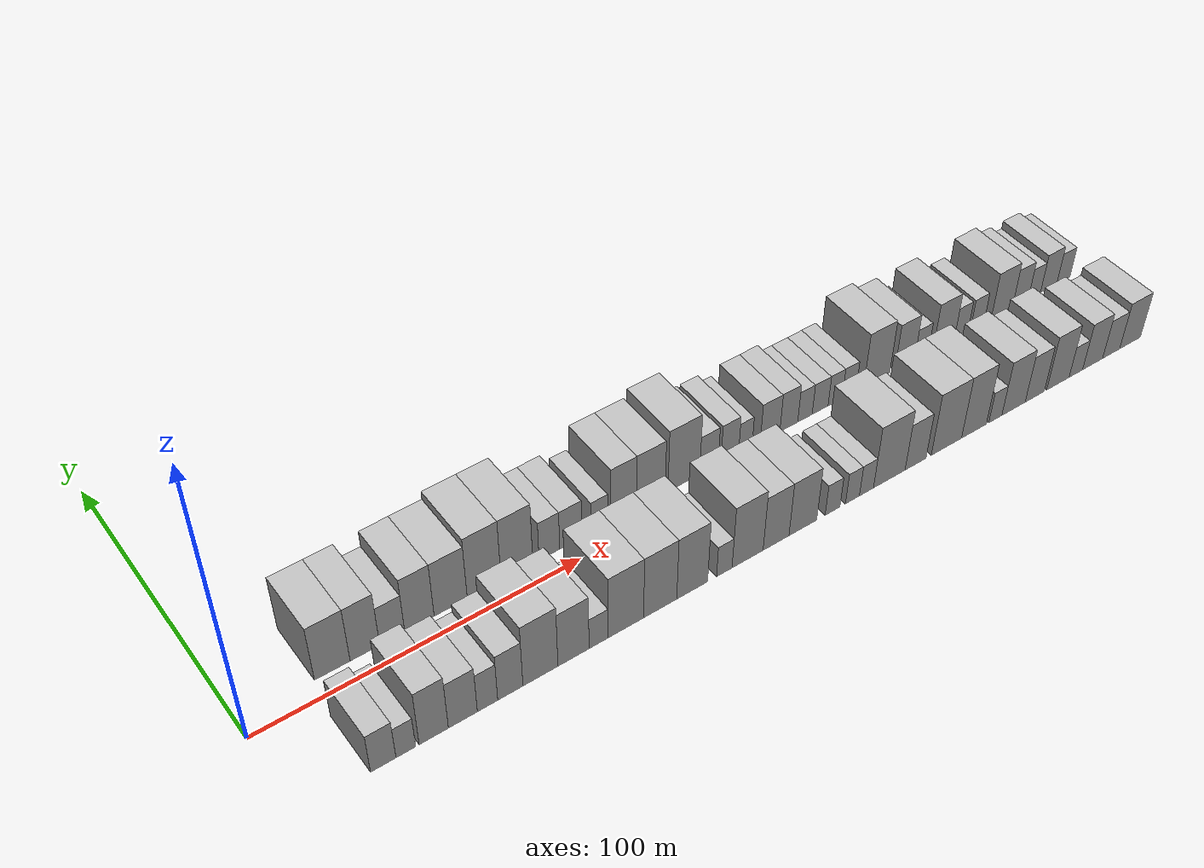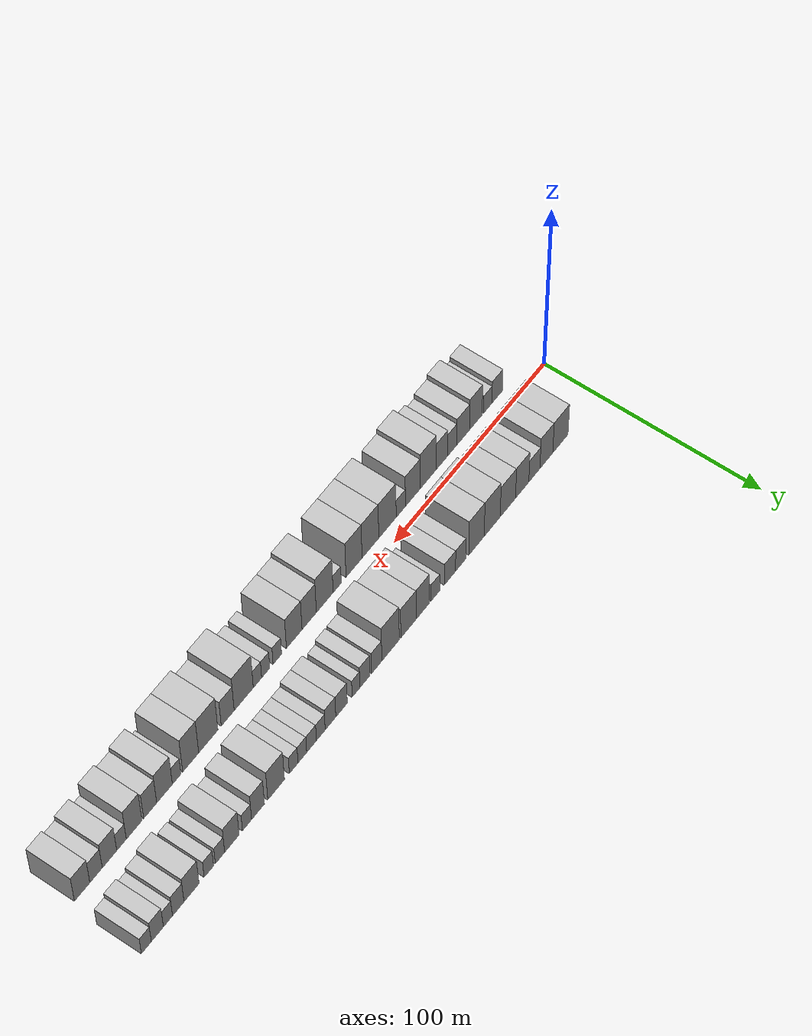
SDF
<sdf version="1.6">
 <world name="default">
  <scene>
   <sky><clouds><speed>12</speed></clouds></sky>
   <ambient>0.4 0.4 0.4 1</ambient>
   <background>0.7 0.7 0.7 1</background>
   <shadows>1</shadows>
  </scene>
  <gravity>0 0 -9.8066</gravity>
  <magnetic_field>6e-06 2.3e-05 -4.2e-05</magnetic_field>
  <physics default="0" name="default_physics" type="ode">
   <ode>
    <solver>
     <type>quick</type>
     <iters>10</iters>
     <sor>1.0</sor>
     <use_dynamic_moi_rescaling>0</use_dynamic_moi_rescaling>
    </solver>
    <constraints>
     <cfm>0</cfm>
     <erp>0.2</erp>
     <contact_max_correcting_vel>100</contact_max_correcting_vel>
     <contact_surface_layer>0.001</contact_surface_layer>
    </constraints>
   </ode>
   <max_step_size>0.004</max_step_size>
   <real_time_factor>1</real_time_factor>
   <real_time_update_rate>250</real_time_update_rate>
  </physics>
  <light name="sun" type="directional">
   <pose>0 0 10 0 0 0</pose>
   <diffuse>0.8 0.8 0.8 1</diffuse>
   <specular>0.2 0.2 0.2 1</specular>
   <attenuation>
    <range>1000</range>
    <constant>0.9</constant>
    <linear>0.01</linear>
    <quadratic>0.001</quadratic>
   </attenuation>
   <direction>-0.5 0.1 -0.9</direction>
  </light>
  <model name="building_1">
   <static>1</static>
   <pose>27.1779 16.0000 0 0.000000 0.000000 1.570796</pose>
   <link name="link">
    <pose>0 0 10.50 0 0 0</pose>
    <collision name="collision"><geometry><box><size>20.0000 10.3558 21.0000</size></box></geometry></collision>
    <visual name="visual">
     <cast_shadows>0</cast_shadows>
     <geometry><box><size>20.0000 10.3558 21.0000</size></box></geometry>
     <material>
      <script>
       <uri>model://HANNAS_wall/materials/scripts</uri>
       <uri>model://HANNAS_wall/materials/textures</uri>
       <name>vrc/HANNAS_wall</name>
      </script>
     </material>
    </visual>
   </link>
  </model>
  <model name="building_2">
   <static>1</static>
   <pose>36.7099 16.0000 0 0.000000 0.000000 1.570796</pose>
   <link name="link">
    <pose>0 0 10.50 0 0 0</pose>
    <collision name="collision"><geometry><box><size>20.0000 8.7081 21.0000</size></box></geometry></collision>
    <visual name="visual">
     <cast_shadows>0</cast_shadows>
     <geometry><box><size>20.0000 8.7081 21.0000</size></box></geometry>
     <material>
      <script>
       <uri>model://HANNAS_wall/materials/scripts</uri>
       <uri>model://HANNAS_wall/materials/textures</uri>
       <name>vrc/HANNAS_wall</name>
      </script>
     </material>
    </visual>
   </link>
  </model>
  <model name="building_3">
   <static>1</static>
   <pose>44.7975 16.0000 0 0.000000 0.000000 1.570796</pose>
   <link name="link">
    <pose>0 0 7.50 0 0 0</pose>
    <collision name="collision"><geometry><box><size>20.0000 7.4669 15.0000</size></box></geometry></collision>
    <visual name="visual">
     <cast_shadows>0</cast_shadows>
     <geometry><box><size>20.0000 7.4669 15.0000</size></box></geometry>
     <material>
      <script>
       <uri>model://HANNAS_wall/materials/scripts</uri>
       <uri>model://HANNAS_wall/materials/textures</uri>
       <name>vrc/HANNAS_wall</name>
      </script>
     </material>
    </visual>
   </link>
  </model>
  <model name="building_4">
   <static>1</static>
   <pose>52.9741 16.0000 0 0.000000 0.000000 1.570796</pose>
   <link name="link">
    <pose>0 0 10.50 0 0 0</pose>
    <collision name="collision"><geometry><box><size>20.0000 8.8863 21.0000</size></box></geometry></collision>
    <visual name="visual">
     <cast_shadows>0</cast_shadows>
     <geometry><box><size>20.0000 8.8863 21.0000</size></box></geometry>
     <material>
      <script>
       <uri>model://HANNAS_wall/materials/scripts</uri>
       <uri>model://HANNAS_wall/materials/textures</uri>
       <name>vrc/HANNAS_wall</name>
      </script>
     </material>
    </visual>
   </link>
  </model>
  <model name="building_5">
   <static>1</static>
   <pose>62.5146 16.0000 0 0.000000 0.000000 1.570796</pose>
   <link name="link">
    <pose>0 0 10.50 0 0 0</pose>
    <collision name="collision"><geometry><box><size>20.0000 10.1948 21.0000</size></box></geometry></collision>
    <visual name="visual">
     <cast_shadows>0</cast_shadows>
     <geometry><box><size>20.0000 10.1948 21.0000</size></box></geometry>
     <material>
      <script>
       <uri>model://HANNAS_wall/materials/scripts</uri>
       <uri>model://HANNAS_wall/materials/textures</uri>
       <name>vrc/HANNAS_wall</name>
      </script>
     </material>
    </visual>
   </link>
  </model>
  <model name="building_6">
   <static>1</static>
   <pose>72.9030 16.0000 0 0.000000 0.000000 1.570796</pose>
   <link name="link">
    <pose>0 0 12.00 0 0 0</pose>
    <collision name="collision"><geometry><box><size>20.0000 10.5820 24.0000</size></box></geometry></collision>
    <visual name="visual">
     <cast_shadows>0</cast_shadows>
     <geometry><box><size>20.0000 10.5820 24.0000</size></box></geometry>
     <material>
      <script>
       <uri>model://HANNAS_wall/materials/scripts</uri>
       <uri>model://HANNAS_wall/materials/textures</uri>
       <name>vrc/HANNAS_wall</name>
      </script>
     </material>
    </visual>
   </link>
  </model>
  <model name="building_7">
   <static>1</static>
   <pose>83.2527 16.0000 0 0.000000 0.000000 1.570796</pose>
   <link name="link">
    <pose>0 0 12.00 0 0 0</pose>
    <collision name="collision"><geometry><box><size>20.0000 10.1174 24.0000</size></box></geometry></collision>
    <visual name="visual">
     <cast_shadows>0</cast_shadows>
     <geometry><box><size>20.0000 10.1174 24.0000</size></box></geometry>
     <material>
      <script>
       <uri>model://HANNAS_wall/materials/scripts</uri>
       <uri>model://HANNAS_wall/materials/textures</uri>
       <name>vrc/HANNAS_wall</name>
      </script>
     </material>
    </visual>
   </link>
  </model>
  <model name="building_8">
   <static>1</static>
   <pose>93.6580 16.0000 0 0.000000 0.000000 1.570796</pose>
   <link name="link">
    <pose>0 0 7.50 0 0 0</pose>
    <collision name="collision"><geometry><box><size>20.0000 6.6933 15.0000</size></box></geometry></collision>
    <visual name="visual">
     <cast_shadows>0</cast_shadows>
     <geometry><box><size>20.0000 6.6933 15.0000</size></box></geometry>
     <material>
      <script>
       <uri>model://HANNAS_wall/materials/scripts</uri>
       <uri>model://HANNAS_wall/materials/textures</uri>
       <name>vrc/HANNAS_wall</name>
      </script>
     </material>
    </visual>
   </link>
  </model>
  <model name="building_9">
   <static>1</static>
   <pose>100.6580 16.0000 0 0.000000 0.000000 1.570796</pose>
   <link name="link">
    <pose>0 0 7.50 0 0 0</pose>
    <collision name="collision"><geometry><box><size>20.0000 7.3065 15.0000</size></box></geometry></collision>
    <visual name="visual">
     <cast_shadows>0</cast_shadows>
     <geometry><box><size>20.0000 7.3065 15.0000</size></box></geometry>
     <material>
      <script>
       <uri>model://HANNAS_wall/materials/scripts</uri>
       <uri>model://HANNAS_wall/materials/textures</uri>
       <name>vrc/HANNAS_wall</name>
      </script>
     </material>
    </visual>
   </link>
  </model>
  <model name="building_10">
   <static>1</static>
   <pose>110.0978 16.0000 0 0.000000 0.000000 1.570796</pose>
   <link name="link">
    <pose>0 0 6.00 0 0 0</pose>
    <collision name="collision"><geometry><box><size>20.0000 5.5731 12.0000</size></box></geometry></collision>
    <visual name="visual">
     <cast_shadows>0</cast_shadows>
     <geometry><box><size>20.0000 5.5731 12.0000</size></box></geometry>
     <material>
      <script>
       <uri>model://HANNAS_wall/materials/scripts</uri>
       <uri>model://HANNAS_wall/materials/textures</uri>
       <name>vrc/HANNAS_wall</name>
      </script>
     </material>
    </visual>
   </link>
  </model>
  <model name="building_11">
   <static>1</static>
   <pose>118.2044 16.0000 0 0.000000 0.000000 1.570796</pose>
   <link name="link">
    <pose>0 0 10.50 0 0 0</pose>
    <collision name="collision"><geometry><box><size>20.0000 8.6402 21.0000</size></box></geometry></collision>
    <visual name="visual">
     <cast_shadows>0</cast_shadows>
     <geometry><box><size>20.0000 8.6402 21.0000</size></box></geometry>
     <material>
      <script>
       <uri>model://HANNAS_wall/materials/scripts</uri>
       <uri>model://HANNAS_wall/materials/textures</uri>
       <name>vrc/HANNAS_wall</name>
      </script>
     </material>
    </visual>
   </link>
  </model>
  <model name="building_12">
   <static>1</static>
   <pose>127.4132 16.0000 0 0.000000 0.000000 1.570796</pose>
   <link name="link">
    <pose>0 0 10.50 0 0 0</pose>
    <collision name="collision"><geometry><box><size>20.0000 9.7773 21.0000</size></box></geometry></collision>
    <visual name="visual">
     <cast_shadows>0</cast_shadows>
     <geometry><box><size>20.0000 9.7773 21.0000</size></box></geometry>
     <material>
      <script>
       <uri>model://HANNAS_wall/materials/scripts</uri>
       <uri>model://HANNAS_wall/materials/textures</uri>
       <name>vrc/HANNAS_wall</name>
      </script>
     </material>
    </visual>
   </link>
  </model>
  <model name="building_13">
   <static>1</static>
   <pose>138.8312 16.0000 0 0.000000 0.000000 1.570796</pose>
   <link name="link">
    <pose>0 0 12.00 0 0 0</pose>
    <collision name="collision"><geometry><box><size>20.0000 11.0585 24.0000</size></box></geometry></collision>
    <visual name="visual">
     <cast_shadows>0</cast_shadows>
     <geometry><box><size>20.0000 11.0585 24.0000</size></box></geometry>
     <material>
      <script>
       <uri>model://HANNAS_wall/materials/scripts</uri>
       <uri>model://HANNAS_wall/materials/textures</uri>
       <name>vrc/HANNAS_wall</name>
      </script>
     </material>
    </visual>
   </link>
  </model>
  <model name="building_14">
   <static>1</static>
   <pose>147.6243 16.0000 0 0.000000 0.000000 1.570796</pose>
   <link name="link">
    <pose>0 0 7.50 0 0 0</pose>
    <collision name="collision"><geometry><box><size>20.0000 6.5277 15.0000</size></box></geometry></collision>
    <visual name="visual">
     <cast_shadows>0</cast_shadows>
     <geometry><box><size>20.0000 6.5277 15.0000</size></box></geometry>
     <material>
      <script>
       <uri>model://HANNAS_wall/materials/scripts</uri>
       <uri>model://HANNAS_wall/materials/textures</uri>
       <name>vrc/HANNAS_wall</name>
      </script>
     </material>
    </visual>
   </link>
  </model>
  <model name="building_15">
   <static>1</static>
   <pose>155.0509 16.0000 0 0.000000 0.000000 1.570796</pose>
   <link name="link">
    <pose>0 0 7.50 0 0 0</pose>
    <collision name="collision"><geometry><box><size>20.0000 6.3255 15.0000</size></box></geometry></collision>
    <visual name="visual">
     <cast_shadows>0</cast_shadows>
     <geometry><box><size>20.0000 6.3255 15.0000</size></box></geometry>
     <material>
      <script>
       <uri>model://HANNAS_wall/materials/scripts</uri>
       <uri>model://HANNAS_wall/materials/textures</uri>
       <name>vrc/HANNAS_wall</name>
      </script>
     </material>
    </visual>
   </link>
  </model>
  <model name="building_16">
   <static>1</static>
   <pose>160.6476 16.0000 0 0.000000 0.000000 1.570796</pose>
   <link name="link">
    <pose>0 0 6.00 0 0 0</pose>
    <collision name="collision"><geometry><box><size>20.0000 4.8679 12.0000</size></box></geometry></collision>
    <visual name="visual">
     <cast_shadows>0</cast_shadows>
     <geometry><box><size>20.0000 4.8679 12.0000</size></box></geometry>
     <material>
      <script>
       <uri>model://HANNAS_wall/materials/scripts</uri>
       <uri>model://HANNAS_wall/materials/textures</uri>
       <name>vrc/HANNAS_wall</name>
      </script>
     </material>
    </visual>
   </link>
  </model>
  <model name="building_17">
   <static>1</static>
   <pose>169.6573 16.0000 0 0.000000 0.000000 1.570796</pose>
   <link name="link">
    <pose>0 0 7.50 0 0 0</pose>
    <collision name="collision"><geometry><box><size>20.0000 7.1515 15.0000</size></box></geometry></collision>
    <visual name="visual">
     <cast_shadows>0</cast_shadows>
     <geometry><box><size>20.0000 7.1515 15.0000</size></box></geometry>
     <material>
      <script>
       <uri>model://HANNAS_wall/materials/scripts</uri>
       <uri>model://HANNAS_wall/materials/textures</uri>
       <name>vrc/HANNAS_wall</name>
      </script>
     </material>
    </visual>
   </link>
  </model>
  <model name="building_18">
   <static>1</static>
   <pose>176.5369 16.0000 0 0.000000 0.000000 1.570796</pose>
   <link name="link">
    <pose>0 0 7.50 0 0 0</pose>
    <collision name="collision"><geometry><box><size>20.0000 6.6078 15.0000</size></box></geometry></collision>
    <visual name="visual">
     <cast_shadows>0</cast_shadows>
     <geometry><box><size>20.0000 6.6078 15.0000</size></box></geometry>
     <material>
      <script>
       <uri>model://HANNAS_wall/materials/scripts</uri>
       <uri>model://HANNAS_wall/materials/textures</uri>
       <name>vrc/HANNAS_wall</name>
      </script>
     </material>
    </visual>
   </link>
  </model>
  <model name="building_19">
   <static>1</static>
   <pose>182.5508 16.0000 0 0.000000 0.000000 1.570796</pose>
   <link name="link">
    <pose>0 0 6.00 0 0 0</pose>
    <collision name="collision"><geometry><box><size>20.0000 5.4199 12.0000</size></box></geometry></collision>
    <visual name="visual">
     <cast_shadows>0</cast_shadows>
     <geometry><box><size>20.0000 5.4199 12.0000</size></box></geometry>
     <material>
      <script>
       <uri>model://HANNAS_wall/materials/scripts</uri>
       <uri>model://HANNAS_wall/materials/textures</uri>
       <name>vrc/HANNAS_wall</name>
      </script>
     </material>
    </visual>
   </link>
  </model>
  <model name="building_20">
   <static>1</static>
   <pose>188.2551 16.0000 0 0.000000 0.000000 1.570796</pose>
   <link name="link">
    <pose>0 0 6.00 0 0 0</pose>
    <collision name="collision"><geometry><box><size>20.0000 5.9887 12.0000</size></box></geometry></collision>
    <visual name="visual">
     <cast_shadows>0</cast_shadows>
     <geometry><box><size>20.0000 5.9887 12.0000</size></box></geometry>
     <material>
      <script>
       <uri>model://HANNAS_wall/materials/scripts</uri>
       <uri>model://HANNAS_wall/materials/textures</uri>
       <name>vrc/HANNAS_wall</name>
      </script>
     </material>
    </visual>
   </link>
  </model>
  <model name="building_21">
   <static>1</static>
   <pose>193.9157 16.0000 0 0.000000 0.000000 1.570796</pose>
   <link name="link">
    <pose>0 0 6.00 0 0 0</pose>
    <collision name="collision"><geometry><box><size>20.0000 5.3326 12.0000</size></box></geometry></collision>
    <visual name="visual">
     <cast_shadows>0</cast_shadows>
     <geometry><box><size>20.0000 5.3326 12.0000</size></box></geometry>
     <material>
      <script>
       <uri>model://HANNAS_wall/materials/scripts</uri>
       <uri>model://HANNAS_wall/materials/textures</uri>
       <name>vrc/HANNAS_wall</name>
      </script>
     </material>
    </visual>
   </link>
  </model>
  <model name="building_22">
   <static>1</static>
   <pose>199.2230 16.0000 0 0.000000 0.000000 1.570796</pose>
   <link name="link">
    <pose>0 0 6.00 0 0 0</pose>
    <collision name="collision"><geometry><box><size>20.0000 5.2819 12.0000</size></box></geometry></collision>
    <visual name="visual">
     <cast_shadows>0</cast_shadows>
     <geometry><box><size>20.0000 5.2819 12.0000</size></box></geometry>
     <material>
      <script>
       <uri>model://HANNAS_wall/materials/scripts</uri>
       <uri>model://HANNAS_wall/materials/textures</uri>
       <name>vrc/HANNAS_wall</name>
      </script>
     </material>
    </visual>
   </link>
  </model>
  <model name="building_23">
   <static>1</static>
   <pose>209.9373 16.0000 0 0.000000 0.000000 1.570796</pose>
   <link name="link">
    <pose>0 0 10.50 0 0 0</pose>
    <collision name="collision"><geometry><box><size>20.0000 10.1466 21.0000</size></box></geometry></collision>
    <visual name="visual">
     <cast_shadows>0</cast_shadows>
     <geometry><box><size>20.0000 10.1466 21.0000</size></box></geometry>
     <material>
      <script>
       <uri>model://HANNAS_wall/materials/scripts</uri>
       <uri>model://HANNAS_wall/materials/textures</uri>
       <name>vrc/HANNAS_wall</name>
      </script>
     </material>
    </visual>
   </link>
  </model>
  <model name="building_24">
   <static>1</static>
   <pose>220.8997 16.0000 0 0.000000 0.000000 1.570796</pose>
   <link name="link">
    <pose>0 0 9.00 0 0 0</pose>
    <collision name="collision"><geometry><box><size>20.0000 7.7781 18.0000</size></box></geometry></collision>
    <visual name="visual">
     <cast_shadows>0</cast_shadows>
     <geometry><box><size>20.0000 7.7781 18.0000</size></box></geometry>
     <material>
      <script>
       <uri>model://HANNAS_wall/materials/scripts</uri>
       <uri>model://HANNAS_wall/materials/textures</uri>
       <name>vrc/HANNAS_wall</name>
      </script>
     </material>
    </visual>
   </link>
  </model>
  <model name="building_25">
   <static>1</static>
   <pose>227.5422 16.0000 0 0.000000 0.000000 1.570796</pose>
   <link name="link">
    <pose>0 0 6.00 0 0 0</pose>
    <collision name="collision"><geometry><box><size>20.0000 5.5069 12.0000</size></box></geometry></collision>
    <visual name="visual">
     <cast_shadows>0</cast_shadows>
     <geometry><box><size>20.0000 5.5069 12.0000</size></box></geometry>
     <material>
      <script>
       <uri>model://HANNAS_wall/materials/scripts</uri>
       <uri>model://HANNAS_wall/materials/textures</uri>
       <name>vrc/HANNAS_wall</name>
      </script>
     </material>
    </visual>
   </link>
  </model>
  <model name="building_26">
   <static>1</static>
   <pose>236.6096 16.0000 0 0.000000 0.000000 1.570796</pose>
   <link name="link">
    <pose>0 0 9.00 0 0 0</pose>
    <collision name="collision"><geometry><box><size>20.0000 8.6280 18.0000</size></box></geometry></collision>
    <visual name="visual">
     <cast_shadows>0</cast_shadows>
     <geometry><box><size>20.0000 8.6280 18.0000</size></box></geometry>
     <material>
      <script>
       <uri>model://HANNAS_wall/materials/scripts</uri>
       <uri>model://HANNAS_wall/materials/textures</uri>
       <name>vrc/HANNAS_wall</name>
      </script>
     </material>
    </visual>
   </link>
  </model>
  <model name="building_27">
   <static>1</static>
   <pose>243.6946 16.0000 0 0.000000 0.000000 1.570796</pose>
   <link name="link">
    <pose>0 0 6.00 0 0 0</pose>
    <collision name="collision"><geometry><box><size>20.0000 5.5418 12.0000</size></box></geometry></collision>
    <visual name="visual">
     <cast_shadows>0</cast_shadows>
     <geometry><box><size>20.0000 5.5418 12.0000</size></box></geometry>
     <material>
      <script>
       <uri>model://HANNAS_wall/materials/scripts</uri>
       <uri>model://HANNAS_wall/materials/textures</uri>
       <name>vrc/HANNAS_wall</name>
      </script>
     </material>
    </visual>
   </link>
  </model>
  <model name="building_28">
   <static>1</static>
   <pose>250.2726 16.0000 0 0.000000 0.000000 1.570796</pose>
   <link name="link">
    <pose>0 0 6.00 0 0 0</pose>
    <collision name="collision"><geometry><box><size>20.0000 5.6143 12.0000</size></box></geometry></collision>
    <visual name="visual">
     <cast_shadows>0</cast_shadows>
     <geometry><box><size>20.0000 5.6143 12.0000</size></box></geometry>
     <material>
      <script>
       <uri>model://HANNAS_wall/materials/scripts</uri>
       <uri>model://HANNAS_wall/materials/textures</uri>
       <name>vrc/HANNAS_wall</name>
      </script>
     </material>
    </visual>
   </link>
  </model>
  <model name="building_29">
   <static>1</static>
   <pose>260.5104 16.0000 0 0.000000 0.000000 1.570796</pose>
   <link name="link">
    <pose>0 0 9.00 0 0 0</pose>
    <collision name="collision"><geometry><box><size>20.0000 8.8612 18.0000</size></box></geometry></collision>
    <visual name="visual">
     <cast_shadows>0</cast_shadows>
     <geometry><box><size>20.0000 8.8612 18.0000</size></box></geometry>
     <material>
      <script>
       <uri>model://HANNAS_wall/materials/scripts</uri>
       <uri>model://HANNAS_wall/materials/textures</uri>
       <name>vrc/HANNAS_wall</name>
      </script>
     </material>
    </visual>
   </link>
  </model>
  <model name="building_30">
   <static>1</static>
   <pose>268.3135 16.0000 0 0.000000 0.000000 1.570796</pose>
   <link name="link">
    <pose>0 0 7.50 0 0 0</pose>
    <collision name="collision"><geometry><box><size>20.0000 6.7450 15.0000</size></box></geometry></collision>
    <visual name="visual">
     <cast_shadows>0</cast_shadows>
     <geometry><box><size>20.0000 6.7450 15.0000</size></box></geometry>
     <material>
      <script>
       <uri>model://HANNAS_wall/materials/scripts</uri>
       <uri>model://HANNAS_wall/materials/textures</uri>
       <name>vrc/HANNAS_wall</name>
      </script>
     </material>
    </visual>
   </link>
  </model>
  <model name="building_31">
   <static>1</static>
   <pose>274.3185 16.0000 0 0.000000 0.000000 1.570796</pose>
   <link name="link">
    <pose>0 0 6.00 0 0 0</pose>
    <collision name="collision"><geometry><box><size>20.0000 5.2650 12.0000</size></box></geometry></collision>
    <visual name="visual">
     <cast_shadows>0</cast_shadows>
     <geometry><box><size>20.0000 5.2650 12.0000</size></box></geometry>
     <material>
      <script>
       <uri>model://HANNAS_wall/materials/scripts</uri>
       <uri>model://HANNAS_wall/materials/textures</uri>
       <name>vrc/HANNAS_wall</name>
      </script>
     </material>
    </visual>
   </link>
  </model>
  <model name="building_32">
   <static>1</static>
   <pose>280.4677 16.0000 0 0.000000 0.000000 1.570796</pose>
   <link name="link">
    <pose>0 0 7.50 0 0 0</pose>
    <collision name="collision"><geometry><box><size>20.0000 7.0334 15.0000</size></box></geometry></collision>
    <visual name="visual">
     <cast_shadows>0</cast_shadows>
     <geometry><box><size>20.0000 7.0334 15.0000</size></box></geometry>
     <material>
      <script>
       <uri>model://HANNAS_wall/materials/scripts</uri>
       <uri>model://HANNAS_wall/materials/textures</uri>
       <name>vrc/HANNAS_wall</name>
      </script>
     </material>
    </visual>
   </link>
  </model>
  <model name="building_33">
   <static>1</static>
   <pose>286.8735 16.0000 0 0.000000 0.000000 1.570796</pose>
   <link name="link">
    <pose>0 0 6.00 0 0 0</pose>
    <collision name="collision"><geometry><box><size>20.0000 5.7783 12.0000</size></box></geometry></collision>
    <visual name="visual">
     <cast_shadows>0</cast_shadows>
     <geometry><box><size>20.0000 5.7783 12.0000</size></box></geometry>
     <material>
      <script>
       <uri>model://HANNAS_wall/materials/scripts</uri>
       <uri>model://HANNAS_wall/materials/textures</uri>
       <name>vrc/HANNAS_wall</name>
      </script>
     </material>
    </visual>
   </link>
  </model>
  <model name="building_34">
   <static>1</static>
   <pose>23.5698 -16.0000 0 0.000000 0.000000 1.570796</pose>
   <link name="link">
    <pose>0 0 7.50 0 0 0</pose>
    <collision name="collision"><geometry><box><size>20.0000 7.1395 15.0000</size></box></geometry></collision>
    <visual name="visual">
     <cast_shadows>0</cast_shadows>
     <geometry><box><size>20.0000 7.1395 15.0000</size></box></geometry>
     <material>
      <script>
       <uri>model://HANNAS_wall/materials/scripts</uri>
       <uri>model://HANNAS_wall/materials/textures</uri>
       <name>vrc/HANNAS_wall</name>
      </script>
     </material>
    </visual>
   </link>
  </model>
  <model name="building_35">
   <static>1</static>
   <pose>29.9366 -16.0000 0 0.000000 0.000000 1.570796</pose>
   <link name="link">
    <pose>0 0 6.00 0 0 0</pose>
    <collision name="collision"><geometry><box><size>20.0000 5.5942 12.0000</size></box></geometry></collision>
    <visual name="visual">
     <cast_shadows>0</cast_shadows>
     <geometry><box><size>20.0000 5.5942 12.0000</size></box></geometry>
     <material>
      <script>
       <uri>model://HANNAS_wall/materials/scripts</uri>
       <uri>model://HANNAS_wall/materials/textures</uri>
       <name>vrc/HANNAS_wall</name>
      </script>
     </material>
    </visual>
   </link>
  </model>
  <model name="building_36">
   <static>1</static>
   <pose>37.9491 -16.0000 0 0.000000 0.000000 1.570796</pose>
   <link name="link">
    <pose>0 0 10.50 0 0 0</pose>
    <collision name="collision"><geometry><box><size>20.0000 8.4307 21.0000</size></box></geometry></collision>
    <visual name="visual">
     <cast_shadows>0</cast_shadows>
     <geometry><box><size>20.0000 8.4307 21.0000</size></box></geometry>
     <material>
      <script>
       <uri>model://HANNAS_wall/materials/scripts</uri>
       <uri>model://HANNAS_wall/materials/textures</uri>
       <name>vrc/HANNAS_wall</name>
      </script>
     </material>
    </visual>
   </link>
  </model>
  <model name="building_37">
   <static>1</static>
   <pose>46.4005 -16.0000 0 0.000000 0.000000 1.570796</pose>
   <link name="link">
    <pose>0 0 9.00 0 0 0</pose>
    <collision name="collision"><geometry><box><size>20.0000 8.4721 18.0000</size></box></geometry></collision>
    <visual name="visual">
     <cast_shadows>0</cast_shadows>
     <geometry><box><size>20.0000 8.4721 18.0000</size></box></geometry>
     <material>
      <script>
       <uri>model://HANNAS_wall/materials/scripts</uri>
       <uri>model://HANNAS_wall/materials/textures</uri>
       <name>vrc/HANNAS_wall</name>
      </script>
     </material>
    </visual>
   </link>
  </model>
  <model name="building_38">
   <static>1</static>
   <pose>53.6476 -16.0000 0 0.000000 0.000000 1.570796</pose>
   <link name="link">
    <pose>0 0 7.50 0 0 0</pose>
    <collision name="collision"><geometry><box><size>20.0000 6.0220 15.0000</size></box></geometry></collision>
    <visual name="visual">
     <cast_shadows>0</cast_shadows>
     <geometry><box><size>20.0000 6.0220 15.0000</size></box></geometry>
     <material>
      <script>
       <uri>model://HANNAS_wall/materials/scripts</uri>
       <uri>model://HANNAS_wall/materials/textures</uri>
       <name>vrc/HANNAS_wall</name>
      </script>
     </material>
    </visual>
   </link>
  </model>
  <model name="building_39">
   <static>1</static>
   <pose>60.4409 -16.0000 0 0.000000 0.000000 1.570796</pose>
   <link name="link">
    <pose>0 0 9.00 0 0 0</pose>
    <collision name="collision"><geometry><box><size>20.0000 7.5647 18.0000</size></box></geometry></collision>
    <visual name="visual">
     <cast_shadows>0</cast_shadows>
     <geometry><box><size>20.0000 7.5647 18.0000</size></box></geometry>
     <material>
      <script>
       <uri>model://HANNAS_wall/materials/scripts</uri>
       <uri>model://HANNAS_wall/materials/textures</uri>
       <name>vrc/HANNAS_wall</name>
      </script>
     </material>
    </visual>
   </link>
  </model>
  <model name="building_40">
   <static>1</static>
   <pose>69.5474 -16.0000 0 0.000000 0.000000 1.570796</pose>
   <link name="link">
    <pose>0 0 12.00 0 0 0</pose>
    <collision name="collision"><geometry><box><size>20.0000 10.6483 24.0000</size></box></geometry></collision>
    <visual name="visual">
     <cast_shadows>0</cast_shadows>
     <geometry><box><size>20.0000 10.6483 24.0000</size></box></geometry>
     <material>
      <script>
       <uri>model://HANNAS_wall/materials/scripts</uri>
       <uri>model://HANNAS_wall/materials/textures</uri>
       <name>vrc/HANNAS_wall</name>
      </script>
     </material>
    </visual>
   </link>
  </model>
  <model name="building_41">
   <static>1</static>
   <pose>79.7077 -16.0000 0 0.000000 0.000000 1.570796</pose>
   <link name="link">
    <pose>0 0 10.50 0 0 0</pose>
    <collision name="collision"><geometry><box><size>20.0000 9.6722 21.0000</size></box></geometry></collision>
    <visual name="visual">
     <cast_shadows>0</cast_shadows>
     <geometry><box><size>20.0000 9.6722 21.0000</size></box></geometry>
     <material>
      <script>
       <uri>model://HANNAS_wall/materials/scripts</uri>
       <uri>model://HANNAS_wall/materials/textures</uri>
       <name>vrc/HANNAS_wall</name>
      </script>
     </material>
    </visual>
   </link>
  </model>
  <model name="building_42">
   <static>1</static>
   <pose>87.5424 -16.0000 0 0.000000 0.000000 1.570796</pose>
   <link name="link">
    <pose>0 0 6.00 0 0 0</pose>
    <collision name="collision"><geometry><box><size>20.0000 5.9973 12.0000</size></box></geometry></collision>
    <visual name="visual">
     <cast_shadows>0</cast_shadows>
     <geometry><box><size>20.0000 5.9973 12.0000</size></box></geometry>
     <material>
      <script>
       <uri>model://HANNAS_wall/materials/scripts</uri>
       <uri>model://HANNAS_wall/materials/textures</uri>
       <name>vrc/HANNAS_wall</name>
      </script>
     </material>
    </visual>
   </link>
  </model>
  <model name="building_43">
   <static>1</static>
   <pose>96.1843 -16.0000 0 0.000000 0.000000 1.570796</pose>
   <link name="link">
    <pose>0 0 12.00 0 0 0</pose>
    <collision name="collision"><geometry><box><size>20.0000 11.2865 24.0000</size></box></geometry></collision>
    <visual name="visual">
     <cast_shadows>0</cast_shadows>
     <geometry><box><size>20.0000 11.2865 24.0000</size></box></geometry>
     <material>
      <script>
       <uri>model://HANNAS_wall/materials/scripts</uri>
       <uri>model://HANNAS_wall/materials/textures</uri>
       <name>vrc/HANNAS_wall</name>
      </script>
     </material>
    </visual>
   </link>
  </model>
  <model name="building_44">
   <static>1</static>
   <pose>107.2164 -16.0000 0 0.000000 0.000000 1.570796</pose>
   <link name="link">
    <pose>0 0 12.00 0 0 0</pose>
    <collision name="collision"><geometry><box><size>20.0000 10.7777 24.0000</size></box></geometry></collision>
    <visual name="visual">
     <cast_shadows>0</cast_shadows>
     <geometry><box><size>20.0000 10.7777 24.0000</size></box></geometry>
     <material>
      <script>
       <uri>model://HANNAS_wall/materials/scripts</uri>
       <uri>model://HANNAS_wall/materials/textures</uri>
       <name>vrc/HANNAS_wall</name>
      </script>
     </material>
    </visual>
   </link>
  </model>
  <model name="building_45">
   <static>1</static>
   <pose>117.7273 -16.0000 0 0.000000 0.000000 1.570796</pose>
   <link name="link">
    <pose>0 0 12.00 0 0 0</pose>
    <collision name="collision"><geometry><box><size>20.0000 10.2442 24.0000</size></box></geometry></collision>
    <visual name="visual">
     <cast_shadows>0</cast_shadows>
     <geometry><box><size>20.0000 10.2442 24.0000</size></box></geometry>
     <material>
      <script>
       <uri>model://HANNAS_wall/materials/scripts</uri>
       <uri>model://HANNAS_wall/materials/textures</uri>
       <name>vrc/HANNAS_wall</name>
      </script>
     </material>
    </visual>
   </link>
  </model>
  <model name="building_46">
   <static>1</static>
   <pose>128.4539 -16.0000 0 0.000000 0.000000 1.570796</pose>
   <link name="link">
    <pose>0 0 6.00 0 0 0</pose>
    <collision name="collision"><geometry><box><size>20.0000 5.2090 12.0000</size></box></geometry></collision>
    <visual name="visual">
     <cast_shadows>0</cast_shadows>
     <geometry><box><size>20.0000 5.2090 12.0000</size></box></geometry>
     <material>
      <script>
       <uri>model://HANNAS_wall/materials/scripts</uri>
       <uri>model://HANNAS_wall/materials/textures</uri>
       <name>vrc/HANNAS_wall</name>
      </script>
     </material>
    </visual>
   </link>
  </model>
  <model name="building_47">
   <static>1</static>
   <pose>136.3550 -16.0000 0 0.000000 0.000000 1.570796</pose>
   <link name="link">
    <pose>0 0 12.00 0 0 0</pose>
    <collision name="collision"><geometry><box><size>20.0000 10.5931 24.0000</size></box></geometry></collision>
    <visual name="visual">
     <cast_shadows>0</cast_shadows>
     <geometry><box><size>20.0000 10.5931 24.0000</size></box></geometry>
     <material>
      <script>
       <uri>model://HANNAS_wall/materials/scripts</uri>
       <uri>model://HANNAS_wall/materials/textures</uri>
       <name>vrc/HANNAS_wall</name>
      </script>
     </material>
    </visual>
   </link>
  </model>
  <model name="building_48">
   <static>1</static>
   <pose>146.1478 -16.0000 0 0.000000 0.000000 1.570796</pose>
   <link name="link">
    <pose>0 0 10.50 0 0 0</pose>
    <collision name="collision"><geometry><box><size>20.0000 8.9924 21.0000</size></box></geometry></collision>
    <visual name="visual">
     <cast_shadows>0</cast_shadows>
     <geometry><box><size>20.0000 8.9924 21.0000</size></box></geometry>
     <material>
      <script>
       <uri>model://HANNAS_wall/materials/scripts</uri>
       <uri>model://HANNAS_wall/materials/textures</uri>
       <name>vrc/HANNAS_wall</name>
      </script>
     </material>
    </visual>
   </link>
  </model>
  <model name="building_49">
   <static>1</static>
   <pose>155.5328 -16.0000 0 0.000000 0.000000 1.570796</pose>
   <link name="link">
    <pose>0 0 10.50 0 0 0</pose>
    <collision name="collision"><geometry><box><size>20.0000 9.7778 21.0000</size></box></geometry></collision>
    <visual name="visual">
     <cast_shadows>0</cast_shadows>
     <geometry><box><size>20.0000 9.7778 21.0000</size></box></geometry>
     <material>
      <script>
       <uri>model://HANNAS_wall/materials/scripts</uri>
       <uri>model://HANNAS_wall/materials/textures</uri>
       <name>vrc/HANNAS_wall</name>
      </script>
     </material>
    </visual>
   </link>
  </model>
  <model name="building_50">
   <static>1</static>
   <pose>166.0678 -16.0000 0 0.000000 0.000000 1.570796</pose>
   <link name="link">
    <pose>0 0 6.00 0 0 0</pose>
    <collision name="collision"><geometry><box><size>20.0000 5.2921 12.0000</size></box></geometry></collision>
    <visual name="visual">
     <cast_shadows>0</cast_shadows>
     <geometry><box><size>20.0000 5.2921 12.0000</size></box></geometry>
     <material>
      <script>
       <uri>model://HANNAS_wall/materials/scripts</uri>
       <uri>model://HANNAS_wall/materials/textures</uri>
       <name>vrc/HANNAS_wall</name>
      </script>
     </material>
    </visual>
   </link>
  </model>
  <model name="building_51">
   <static>1</static>
   <pose>173.2353 -16.0000 0 0.000000 0.000000 1.570796</pose>
   <link name="link">
    <pose>0 0 6.00 0 0 0</pose>
    <collision name="collision"><geometry><box><size>20.0000 5.0428 12.0000</size></box></geometry></collision>
    <visual name="visual">
     <cast_shadows>0</cast_shadows>
     <geometry><box><size>20.0000 5.0428 12.0000</size></box></geometry>
     <material>
      <script>
       <uri>model://HANNAS_wall/materials/scripts</uri>
       <uri>model://HANNAS_wall/materials/textures</uri>
       <name>vrc/HANNAS_wall</name>
      </script>
     </material>
    </visual>
   </link>
  </model>
  <model name="building_52">
   <static>1</static>
   <pose>178.3296 -16.0000 0 0.000000 0.000000 1.570796</pose>
   <link name="link">
    <pose>0 0 6.00 0 0 0</pose>
    <collision name="collision"><geometry><box><size>20.0000 5.1458 12.0000</size></box></geometry></collision>
    <visual name="visual">
     <cast_shadows>0</cast_shadows>
     <geometry><box><size>20.0000 5.1458 12.0000</size></box></geometry>
     <material>
      <script>
       <uri>model://HANNAS_wall/materials/scripts</uri>
       <uri>model://HANNAS_wall/materials/textures</uri>
       <name>vrc/HANNAS_wall</name>
      </script>
     </material>
    </visual>
   </link>
  </model>
  <model name="building_53">
   <static>1</static>
   <pose>186.7663 -16.0000 0 0.000000 0.000000 1.570796</pose>
   <link name="link">
    <pose>0 0 12.00 0 0 0</pose>
    <collision name="collision"><geometry><box><size>20.0000 11.7276 24.0000</size></box></geometry></collision>
    <visual name="visual">
     <cast_shadows>0</cast_shadows>
     <geometry><box><size>20.0000 11.7276 24.0000</size></box></geometry>
     <material>
      <script>
       <uri>model://HANNAS_wall/materials/scripts</uri>
       <uri>model://HANNAS_wall/materials/textures</uri>
       <name>vrc/HANNAS_wall</name>
      </script>
     </material>
    </visual>
   </link>
  </model>
  <model name="building_54">
   <static>1</static>
   <pose>196.5714 -16.0000 0 0.000000 0.000000 1.570796</pose>
   <link name="link">
    <pose>0 0 9.00 0 0 0</pose>
    <collision name="collision"><geometry><box><size>20.0000 7.8826 18.0000</size></box></geometry></collision>
    <visual name="visual">
     <cast_shadows>0</cast_shadows>
     <geometry><box><size>20.0000 7.8826 18.0000</size></box></geometry>
     <material>
      <script>
       <uri>model://HANNAS_wall/materials/scripts</uri>
       <uri>model://HANNAS_wall/materials/textures</uri>
       <name>vrc/HANNAS_wall</name>
      </script>
     </material>
    </visual>
   </link>
  </model>
  <model name="building_55">
   <static>1</static>
   <pose>208.3200 -16.0000 0 0.000000 0.000000 1.570796</pose>
   <link name="link">
    <pose>0 0 12.00 0 0 0</pose>
    <collision name="collision"><geometry><box><size>20.0000 11.6145 24.0000</size></box></geometry></collision>
    <visual name="visual">
     <cast_shadows>0</cast_shadows>
     <geometry><box><size>20.0000 11.6145 24.0000</size></box></geometry>
     <material>
      <script>
       <uri>model://HANNAS_wall/materials/scripts</uri>
       <uri>model://HANNAS_wall/materials/textures</uri>
       <name>vrc/HANNAS_wall</name>
      </script>
     </material>
    </visual>
   </link>
  </model>
  <model name="building_56">
   <static>1</static>
   <pose>218.9475 -16.0000 0 0.000000 0.000000 1.570796</pose>
   <link name="link">
    <pose>0 0 12.00 0 0 0</pose>
    <collision name="collision"><geometry><box><size>20.0000 9.6405 24.0000</size></box></geometry></collision>
    <visual name="visual">
     <cast_shadows>0</cast_shadows>
     <geometry><box><size>20.0000 9.6405 24.0000</size></box></geometry>
     <material>
      <script>
       <uri>model://HANNAS_wall/materials/scripts</uri>
       <uri>model://HANNAS_wall/materials/textures</uri>
       <name>vrc/HANNAS_wall</name>
      </script>
     </material>
    </visual>
   </link>
  </model>
  <model name="building_57">
   <static>1</static>
   <pose>227.3424 -16.0000 0 0.000000 0.000000 1.570796</pose>
   <link name="link">
    <pose>0 0 6.00 0 0 0</pose>
    <collision name="collision"><geometry><box><size>20.0000 5.1493 12.0000</size></box></geometry></collision>
    <visual name="visual">
     <cast_shadows>0</cast_shadows>
     <geometry><box><size>20.0000 5.1493 12.0000</size></box></geometry>
     <material>
      <script>
       <uri>model://HANNAS_wall/materials/scripts</uri>
       <uri>model://HANNAS_wall/materials/textures</uri>
       <name>vrc/HANNAS_wall</name>
      </script>
     </material>
    </visual>
   </link>
  </model>
  <model name="building_58">
   <static>1</static>
   <pose>234.5735 -16.0000 0 0.000000 0.000000 1.570796</pose>
   <link name="link">
    <pose>0 0 10.50 0 0 0</pose>
    <collision name="collision"><geometry><box><size>20.0000 9.3128 21.0000</size></box></geometry></collision>
    <visual name="visual">
     <cast_shadows>0</cast_shadows>
     <geometry><box><size>20.0000 9.3128 21.0000</size></box></geometry>
     <material>
      <script>
       <uri>model://HANNAS_wall/materials/scripts</uri>
       <uri>model://HANNAS_wall/materials/textures</uri>
       <name>vrc/HANNAS_wall</name>
      </script>
     </material>
    </visual>
   </link>
  </model>
  <model name="building_59">
   <static>1</static>
   <pose>243.0842 -16.0000 0 0.000000 0.000000 1.570796</pose>
   <link name="link">
    <pose>0 0 9.00 0 0 0</pose>
    <collision name="collision"><geometry><box><size>20.0000 7.7087 18.0000</size></box></geometry></collision>
    <visual name="visual">
     <cast_shadows>0</cast_shadows>
     <geometry><box><size>20.0000 7.7087 18.0000</size></box></geometry>
     <material>
      <script>
       <uri>model://HANNAS_wall/materials/scripts</uri>
       <uri>model://HANNAS_wall/materials/textures</uri>
       <name>vrc/HANNAS_wall</name>
      </script>
     </material>
    </visual>
   </link>
  </model>
  <model name="building_60">
   <static>1</static>
   <pose>252.5407 -16.0000 0 0.000000 0.000000 1.570796</pose>
   <link name="link">
    <pose>0 0 10.50 0 0 0</pose>
    <collision name="collision"><geometry><box><size>20.0000 9.2043 21.0000</size></box></geometry></collision>
    <visual name="visual">
     <cast_shadows>0</cast_shadows>
     <geometry><box><size>20.0000 9.2043 21.0000</size></box></geometry>
     <material>
      <script>
       <uri>model://HANNAS_wall/materials/scripts</uri>
       <uri>model://HANNAS_wall/materials/textures</uri>
       <name>vrc/HANNAS_wall</name>
      </script>
     </material>
    </visual>
   </link>
  </model>
  <model name="building_61">
   <static>1</static>
   <pose>259.9438 -16.0000 0 0.000000 0.000000 1.570796</pose>
   <link name="link">
    <pose>0 0 6.00 0 0 0</pose>
    <collision name="collision"><geometry><box><size>20.0000 5.6019 12.0000</size></box></geometry></collision>
    <visual name="visual">
     <cast_shadows>0</cast_shadows>
     <geometry><box><size>20.0000 5.6019 12.0000</size></box></geometry>
     <material>
      <script>
       <uri>model://HANNAS_wall/materials/scripts</uri>
       <uri>model://HANNAS_wall/materials/textures</uri>
       <name>vrc/HANNAS_wall</name>
      </script>
     </material>
    </visual>
   </link>
  </model>
  <model name="building_62">
   <static>1</static>
   <pose>266.9490 -16.0000 0 0.000000 0.000000 1.570796</pose>
   <link name="link">
    <pose>0 0 9.00 0 0 0</pose>
    <collision name="collision"><geometry><box><size>20.0000 8.4085 18.0000</size></box></geometry></collision>
    <visual name="visual">
     <cast_shadows>0</cast_shadows>
     <geometry><box><size>20.0000 8.4085 18.0000</size></box></geometry>
     <material>
      <script>
       <uri>model://HANNAS_wall/materials/scripts</uri>
       <uri>model://HANNAS_wall/materials/textures</uri>
       <name>vrc/HANNAS_wall</name>
      </script>
     </material>
    </visual>
   </link>
  </model>
  <model name="building_63">
   <static>1</static>
   <pose>274.7577 -16.0000 0 0.000000 0.000000 1.570796</pose>
   <link name="link">
    <pose>0 0 7.50 0 0 0</pose>
    <collision name="collision"><geometry><box><size>20.0000 7.2088 15.0000</size></box></geometry></collision>
    <visual name="visual">
     <cast_shadows>0</cast_shadows>
     <geometry><box><size>20.0000 7.2088 15.0000</size></box></geometry>
     <material>
      <script>
       <uri>model://HANNAS_wall/materials/scripts</uri>
       <uri>model://HANNAS_wall/materials/textures</uri>
       <name>vrc/HANNAS_wall</name>
      </script>
     </material>
    </visual>
   </link>
  </model>
  <model name="building_64">
   <static>1</static>
   <pose>282.8158 -16.0000 0 0.000000 0.000000 1.570796</pose>
   <link name="link">
    <pose>0 0 9.00 0 0 0</pose>
    <collision name="collision"><geometry><box><size>20.0000 8.9074 18.0000</size></box></geometry></collision>
    <visual name="visual">
     <cast_shadows>0</cast_shadows>
     <geometry><box><size>20.0000 8.9074 18.0000</size></box></geometry>
     <material>
      <script>
       <uri>model://HANNAS_wall/materials/scripts</uri>
       <uri>model://HANNAS_wall/materials/textures</uri>
       <name>vrc/HANNAS_wall</name>
      </script>
     </material>
    </visual>
   </link>
  </model>
 </world>
</sdf>
